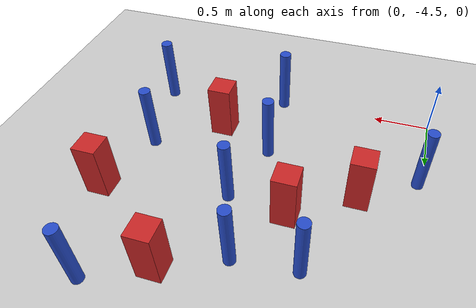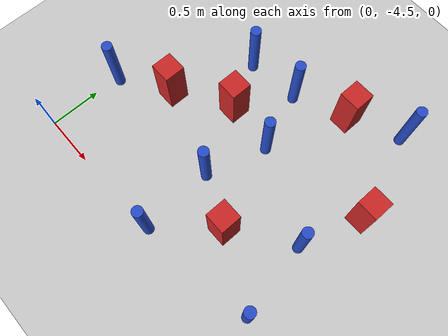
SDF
<sdf version="1.6">
 <world name="default">
  <model name="ground_plane">
   <static>1</static>
   <link name="link">
    <collision name="collision">
     <geometry><plane><normal>0 0 1</normal><size>100 100</size></plane></geometry>
     <surface><friction><ode><mu>100</mu><mu2>50</mu2></ode></friction></surface>
    </collision>
    <visual name="visual">
     <cast_shadows>0</cast_shadows>
     <geometry><plane><normal>0 0 1</normal><size>100 100</size></plane></geometry>
     <material>
      <ambient>1.0 1.0 1.0 1.0</ambient>
      <diffuse>0.8 0.8 0.8 1.0</diffuse>
      <specular>0.01 0.01 0.01 1.000000</specular>
     </material>
    </visual>
   </link>
  </model>
  <model name="pole_obstacle42">
   <static>true</static>
   <pose>2.31248929114 -2.14854013598 -2.66029137441e-07 -5.69430205643e-07 6.84129966548e-07 -8.68349370903e-08</pose>
   <link name="link">
    <pose>0 0 0.3 0 -0 0</pose>
    <inertial>
     <mass>1</mass>
     <inertia><ixx>0.145833</ixx><ixy>0</ixy><ixz>0</ixz><iyy>0.145833</iyy><iyz>0</iyz><izz>0.125</izz></inertia>
    </inertial>
    <collision name="collision">
     <geometry><cylinder><radius>0.05</radius><length>.6</length></cylinder></geometry>
    </collision>
    <visual name="visual">
     <geometry><cylinder><radius>0.05</radius><length>.6</length></cylinder></geometry>
     <material>
      <script><name>Gazebo/Blue</name><uri>file://media/materials/scripts/gazebo.material</uri></script>
     </material>
    </visual>
   </link>
  </model>
  <model name="pole_obstacle48">
   <static>true</static>
   <pose>0.046294303548 -3.74060029182 -2.66029137497e-07 -5.69430205678e-07 6.84129966499e-07 -8.68349371129e-08</pose>
   <link name="link">
    <pose>0 0 0.3 0 -0 0</pose>
    <inertial>
     <mass>1</mass>
     <inertia><ixx>0.145833</ixx><ixy>0</ixy><ixz>0</ixz><iyy>0.145833</iyy><iyz>0</iyz><izz>0.125</izz></inertia>
    </inertial>
    <collision name="collision">
     <geometry><cylinder><radius>0.05</radius><length>.6</length></cylinder></geometry>
    </collision>
    <visual name="visual">
     <geometry><cylinder><radius>0.05</radius><length>.6</length></cylinder></geometry>
     <material>
      <script><name>Gazebo/Blue</name><uri>file://media/materials/scripts/gazebo.material</uri></script>
     </material>
    </visual>
   </link>
  </model>
  <model name="pole_obstacle75">
   <static>true</static>
   <pose>2.55288116183 -4.31305443753 -2.66029137441e-07 -5.69430205635e-07 6.84129966557e-07 -8.68349370832e-08</pose>
   <link name="link">
    <pose>0 0 0.3 0 -0 0</pose>
    <inertial>
     <mass>1</mass>
     <inertia><ixx>0.145833</ixx><ixy>0</ixy><ixz>0</ixz><iyy>0.145833</iyy><iyz>0</iyz><izz>0.125</izz></inertia>
    </inertial>
    <collision name="collision">
     <geometry><cylinder><radius>0.05</radius><length>.6</length></cylinder></geometry>
    </collision>
    <visual name="visual">
     <geometry><cylinder><radius>0.05</radius><length>.6</length></cylinder></geometry>
     <material>
      <script><name>Gazebo/Blue</name><uri>file://media/materials/scripts/gazebo.material</uri></script>
     </material>
    </visual>
   </link>
  </model>
  <model name="square_post_obstacle66">
   <static>true</static>
   <pose>1.86346210854 -3.96790870448 -7.80171244635e-07 7.17449752808e-06 -5.6639232126e-07 2.2715510512e-05</pose>
   <link name="link">
    <pose>0 0 0.25 0 -0 0</pose>
    <inertial>
     <mass>100</mass>
     <inertia>
      <ixx>0.166667</ixx>
      <ixy>0</ixy>
      <ixz>0</ixz>
      <iyy>0.166667</iyy>
      <iyz>0</iyz>
      <izz>0.166667</izz>
     </inertia>
    </inertial>
    <collision name="collision"><geometry><box><size>.2 .2 .5</size></box></geometry></collision>
    <visual name="visual">
     <geometry><box><size>.2 .2 .5</size></box></geometry>
     <material>
      <script><name>Gazebo/Red</name><uri>file://media/materials/scripts/gazebo.material</uri></script>
     </material>
    </visual>
   </link>
  </model>
  <model name="pole_obstacle79">
   <static>true</static>
   <pose>1.41374702477 -4.46231431095 -2.66029137441e-07 -5.69430205635e-07 6.84129966557e-07 -8.68349370822e-08</pose>
   <link name="link">
    <pose>0 0 0.3 0 -0 0</pose>
    <inertial>
     <mass>1</mass>
     <inertia><ixx>0.145833</ixx><ixy>0</ixy><ixz>0</ixz><iyy>0.145833</iyy><iyz>0</iyz><izz>0.125</izz></inertia>
    </inertial>
    <collision name="collision">
     <geometry><cylinder><radius>0.05</radius><length>.6</length></cylinder></geometry>
    </collision>
    <visual name="visual">
     <geometry><cylinder><radius>0.05</radius><length>.6</length></cylinder></geometry>
     <material>
      <script><name>Gazebo/Blue</name><uri>file://media/materials/scripts/gazebo.material</uri></script>
     </material>
    </visual>
   </link>
  </model>
  <model name="square_post_obstacle71">
   <static>true</static>
   <pose>1.0345415356 -3.10886031737 -7.80171244635e-07 7.17449752808e-06 -5.6639232126e-07 2.2715510512e-05</pose>
   <link name="link">
    <pose>0 0 0.25 0 -0 0</pose>
    <inertial>
     <mass>100</mass>
     <inertia>
      <ixx>0.166667</ixx>
      <ixy>0</ixy>
      <ixz>0</ixz>
      <iyy>0.166667</iyy>
      <iyz>0</iyz>
      <izz>0.166667</izz>
     </inertia>
    </inertial>
    <collision name="collision"><geometry><box><size>.2 .2 .5</size></box></geometry></collision>
    <visual name="visual">
     <geometry><box><size>.2 .2 .5</size></box></geometry>
     <material>
      <script><name>Gazebo/Red</name><uri>file://media/materials/scripts/gazebo.material</uri></script>
     </material>
    </visual>
   </link>
  </model>
  <model name="square_post_obstacle92">
   <static>true</static>
   <pose>2.59551853209 -2.98226264884 -7.80171244635e-07 7.17449752808e-06 -5.6639232126e-07 2.2715510512e-05</pose>
   <link name="link">
    <pose>0 0 0.25 0 -0 0</pose>
    <inertial>
     <mass>100</mass>
     <inertia>
      <ixx>0.166667</ixx>
      <ixy>0</ixy>
      <ixz>0</ixz>
      <iyy>0.166667</iyy>
      <iyz>0</iyz>
      <izz>0.166667</izz>
     </inertia>
    </inertial>
    <collision name="collision"><geometry><box><size>.2 .2 .5</size></box></geometry></collision>
    <visual name="visual">
     <geometry><box><size>.2 .2 .5</size></box></geometry>
     <material>
      <script><name>Gazebo/Red</name><uri>file://media/materials/scripts/gazebo.material</uri></script>
     </material>
    </visual>
   </link>
  </model>
  <model name="square_post_obstacle101">
   <static>true</static>
   <pose>0.512166086692 -3.43879553403 -7.80171244635e-07 7.17449752808e-06 -5.6639232126e-07 2.2715510512e-05</pose>
   <link name="link">
    <pose>0 0 0.25 0 -0 0</pose>
    <inertial>
     <mass>100</mass>
     <inertia>
      <ixx>0.166667</ixx>
      <ixy>0</ixy>
      <ixz>0</ixz>
      <iyy>0.166667</iyy>
      <iyz>0</iyz>
      <izz>0.166667</izz>
     </inertia>
    </inertial>
    <collision name="collision"><geometry><box><size>.2 .2 .5</size></box></geometry></collision>
    <visual name="visual">
     <geometry><box><size>.2 .2 .5</size></box></geometry>
     <material>
      <script><name>Gazebo/Red</name><uri>file://media/materials/scripts/gazebo.material</uri></script>
     </material>
    </visual>
   </link>
  </model>
  <model name="pole_obstacle118">
   <static>true</static>
   <pose>1.37227139003 -3.75136929417 -2.66029137441e-07 -5.69430205634e-07 6.84129966558e-07 -8.68349370806e-08</pose>
   <link name="link">
    <pose>0 0 0.3 0 -0 0</pose>
    <inertial>
     <mass>1</mass>
     <inertia><ixx>0.145833</ixx><ixy>0</ixy><ixz>0</ixz><iyy>0.145833</iyy><iyz>0</iyz><izz>0.125</izz></inertia>
    </inertial>
    <collision name="collision">
     <geometry><cylinder><radius>0.05</radius><length>.6</length></cylinder></geometry>
    </collision>
    <visual name="visual">
     <geometry><cylinder><radius>0.05</radius><length>.6</length></cylinder></geometry>
     <material>
      <script><name>Gazebo/Blue</name><uri>file://media/materials/scripts/gazebo.material</uri></script>
     </material>
    </visual>
   </link>
  </model>
  <model name="pole_obstacle120">
   <static>true</static>
   <pose>2.41326067394 -3.58590043363 -2.66029137441e-07 -5.69430205643e-07 6.84129966548e-07 -8.68349370903e-08</pose>
   <link name="link">
    <pose>0 0 0.3 0 -0 0</pose>
    <inertial>
     <mass>1</mass>
     <inertia><ixx>0.145833</ixx><ixy>0</ixy><ixz>0</ixz><iyy>0.145833</iyy><iyz>0</iyz><izz>0.125</izz></inertia>
    </inertial>
    <collision name="collision">
     <geometry><cylinder><radius>0.05</radius><length>.6</length></cylinder></geometry>
    </collision>
    <visual name="visual">
     <geometry><cylinder><radius>0.05</radius><length>.6</length></cylinder></geometry>
     <material>
      <script><name>Gazebo/Blue</name><uri>file://media/materials/scripts/gazebo.material</uri></script>
     </material>
    </visual>
   </link>
  </model>
  <model name="pole_obstacle140">
   <static>true</static>
   <pose>1.32299150573 -2.59924965664 -2.66029137441e-07 -5.69430205634e-07 6.84129966558e-07 -8.68349370806e-08</pose>
   <link name="link">
    <pose>0 0 0.3 0 -0 0</pose>
    <inertial>
     <mass>1</mass>
     <inertia><ixx>0.145833</ixx><ixy>0</ixy><ixz>0</ixz><iyy>0.145833</iyy><iyz>0</iyz><izz>0.125</izz></inertia>
    </inertial>
    <collision name="collision">
     <geometry><cylinder><radius>0.05</radius><length>.6</length></cylinder></geometry>
    </collision>
    <visual name="visual">
     <geometry><cylinder><radius>0.05</radius><length>.6</length></cylinder></geometry>
     <material>
      <script><name>Gazebo/Blue</name><uri>file://media/materials/scripts/gazebo.material</uri></script>
     </material>
    </visual>
   </link>
  </model>
  <model name="pole_obstacle147">
   <static>true</static>
   <pose>1.54036449454 -3.1638119961 -2.66029137441e-07 -5.69430205634e-07 6.84129966558e-07 -8.68349370806e-08</pose>
   <link name="link">
    <pose>0 0 0.3 0 -0 0</pose>
    <inertial>
     <mass>1</mass>
     <inertia><ixx>0.145833</ixx><ixy>0</ixy><ixz>0</ixz><iyy>0.145833</iyy><iyz>0</iyz><izz>0.125</izz></inertia>
    </inertial>
    <collision name="collision">
     <geometry><cylinder><radius>0.05</radius><length>.6</length></cylinder></geometry>
    </collision>
    <visual name="visual">
     <geometry><cylinder><radius>0.05</radius><length>.6</length></cylinder></geometry>
     <material>
      <script><name>Gazebo/Blue</name><uri>file://media/materials/scripts/gazebo.material</uri></script>
     </material>
    </visual>
   </link>
  </model>
  <model name="pole_obstacle166">
   <static>true</static>
   <pose>0.801377727985 -2.64686124198 -2.66029137441e-07 -5.69430205631e-07 6.84129966562e-07 -8.68349370796e-08</pose>
   <link name="link">
    <pose>0 0 0.3 0 -0 0</pose>
    <inertial>
     <mass>1</mass>
     <inertia><ixx>0.145833</ixx><ixy>0</ixy><ixz>0</ixz><iyy>0.145833</iyy><iyz>0</iyz><izz>0.125</izz></inertia>
    </inertial>
    <collision name="collision">
     <geometry><cylinder><radius>0.05</radius><length>.6</length></cylinder></geometry>
    </collision>
    <visual name="visual">
     <geometry><cylinder><radius>0.05</radius><length>.6</length></cylinder></geometry>
     <material>
      <script><name>Gazebo/Blue</name><uri>file://media/materials/scripts/gazebo.material</uri></script>
     </material>
    </visual>
   </link>
  </model>
  <model name="square_post_obstacle187">
   <static>true</static>
   <pose>1.82221345361 -2.3821362567 -7.80171244635e-07 7.17449752808e-06 -5.6639232126e-07 2.2715510512e-05</pose>
   <link name="link">
    <pose>0 0 0.25 0 -0 0</pose>
    <inertial>
     <mass>100</mass>
     <inertia>
      <ixx>0.166667</ixx>
      <ixy>0</ixy>
      <ixz>0</ixz>
      <iyy>0.166667</iyy>
      <iyz>0</iyz>
      <izz>0.166667</izz>
     </inertia>
    </inertial>
    <collision name="collision"><geometry><box><size>.2 .2 .5</size></box></geometry></collision>
    <visual name="visual">
     <geometry><box><size>.2 .2 .5</size></box></geometry>
     <material>
      <script><name>Gazebo/Red</name><uri>file://media/materials/scripts/gazebo.material</uri></script>
     </material>
    </visual>
   </link>
  </model>
 </world>
</sdf>
